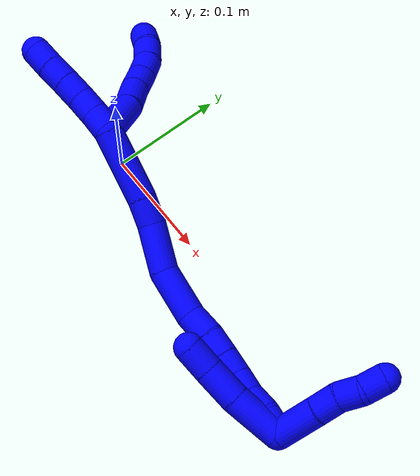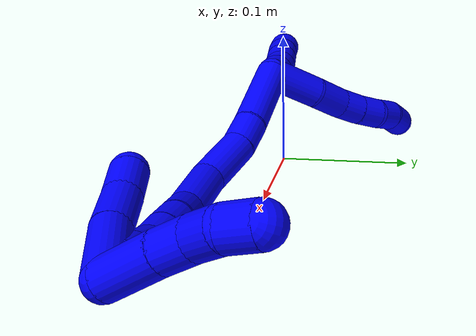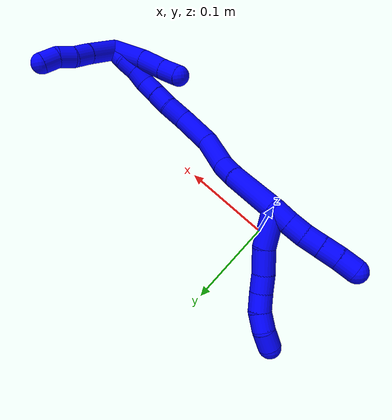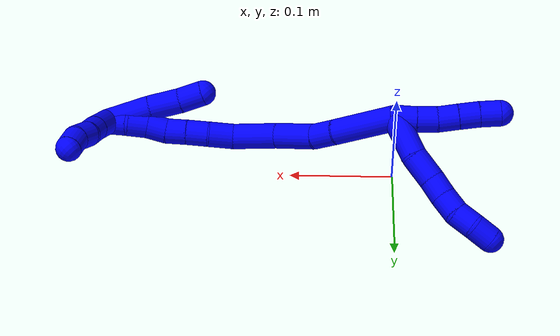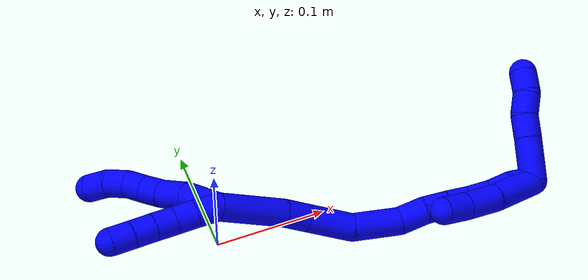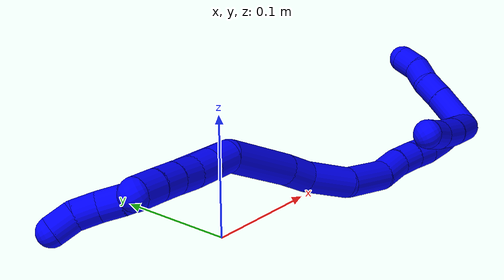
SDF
<sdf version="1.7">
 <world name="default">
  <model name="1">
   <static>0</static>
   <link name="1">
    <collision name="collision-cylinder-e_1_2_8">
     <pose>0.003936 0.006146 -0.019372 -2.83436 0.191318 -1.10955</pose>
     <geometry><cylinder><radius>0.0125</radius><length>0.041403</length></cylinder></geometry>
     <surface>
      <friction><ode><mu>1.16</mu><mu2>1.16</mu2><slip1>0</slip1><slip2>0</slip2></ode></friction>
      <contact><ode><kp>1e+06</kp><kd>1</kd><max_vel>0</max_vel><min_depth>0.001</min_depth></ode></contact>
     </surface>
    </collision>
    <visual name="visual-cylinder-e_1_2_8">
     <pose>0.003936 0.006146 -0.019372 -2.83436 0.191318 -1.10955</pose>
     <geometry><cylinder><radius>0.0125</radius><length>0.041403</length></cylinder></geometry>
     <material><ambient>0 0 1 1</ambient></material>
    </visual>
    <collision name="collision-cylinder-e_2_8_9">
     <pose>0.008924 0.013909 -0.052689 -3.02623 0.074736 -1.14911</pose>
     <geometry><cylinder><radius>0.0125</radius><length>0.028156</length></cylinder></geometry>
     <surface>
      <friction><ode><mu>1.16</mu><mu2>1.16</mu2><slip1>0</slip1><slip2>0</slip2></ode></friction>
      <contact><ode><kp>1e+06</kp><kd>1</kd><max_vel>0</max_vel><min_depth>0.001</min_depth></ode></contact>
     </surface>
    </collision>
    <visual name="visual-cylinder-e_2_8_9">
     <pose>0.008924 0.013909 -0.052689 -3.02623 0.074736 -1.14911</pose>
     <geometry><cylinder><radius>0.0125</radius><length>0.028156</length></cylinder></geometry>
     <material><ambient>0 0 1 1</ambient></material>
    </visual>
    <collision name="collision-cylinder-e_3_9_10">
     <pose>0.010656 0.017963 -0.076344 -2.8955 0.067904 -0.536059</pose>
     <geometry><cylinder><radius>0.0125</radius><length>0.020068</length></cylinder></geometry>
     <surface>
      <friction><ode><mu>1.16</mu><mu2>1.16</mu2><slip1>0</slip1><slip2>0</slip2></ode></friction>
      <contact><ode><kp>1e+06</kp><kd>1</kd><max_vel>0</max_vel><min_depth>0.001</min_depth></ode></contact>
     </surface>
    </collision>
    <visual name="visual-cylinder-e_3_9_10">
     <pose>0.010656 0.017963 -0.076344 -2.8955 0.067904 -0.536059</pose>
     <geometry><cylinder><radius>0.0125</radius><length>0.020068</length></cylinder></geometry>
     <material><ambient>0 0 1 1</ambient></material>
    </visual>
    <collision name="collision-cylinder-e_4_10_11">
     <pose>0.011152 0.023101 -0.095852 -2.87284 -0.018148 0.134038</pose>
     <geometry><cylinder><radius>0.0125</radius><length>0.02033</length></cylinder></geometry>
     <surface>
      <friction><ode><mu>1.16</mu><mu2>1.16</mu2><slip1>0</slip1><slip2>0</slip2></ode></friction>
      <contact><ode><kp>1e+06</kp><kd>1</kd><max_vel>0</max_vel><min_depth>0.001</min_depth></ode></contact>
     </surface>
    </collision>
    <visual name="visual-cylinder-e_4_10_11">
     <pose>0.011152 0.023101 -0.095852 -2.87284 -0.018148 0.134038</pose>
     <geometry><cylinder><radius>0.0125</radius><length>0.02033</length></cylinder></geometry>
     <material><ambient>0 0 1 1</ambient></material>
    </visual>
    <collision name="collision-cylinder-e_5_11_12">
     <pose>0.008965 0.026209 -0.115442 -3.09977 -0.201557 2.73372</pose>
     <geometry><cylinder><radius>0.0125</radius><length>0.020006</length></cylinder></geometry>
     <surface>
      <friction><ode><mu>1.16</mu><mu2>1.16</mu2><slip1>0</slip1><slip2>0</slip2></ode></friction>
      <contact><ode><kp>1e+06</kp><kd>1</kd><max_vel>0</max_vel><min_depth>0.001</min_depth></ode></contact>
     </surface>
    </collision>
    <visual name="visual-cylinder-e_5_11_12">
     <pose>0.008965 0.026209 -0.115442 -3.09977 -0.201557 2.73372</pose>
     <geometry><cylinder><radius>0.0125</radius><length>0.020006</length></cylinder></geometry>
     <material><ambient>0 0 1 1</ambient></material>
    </visual>
    <collision name="collision-cylinder-e_6_12_6">
     <pose>0.006417 0.024562 -0.135024 2.93444 -0.054555 -0.513375</pose>
     <geometry><cylinder><radius>0.0125</radius><length>0.020037</length></cylinder></geometry>
     <surface>
      <friction><ode><mu>1.16</mu><mu2>1.16</mu2><slip1>0</slip1><slip2>0</slip2></ode></friction>
      <contact><ode><kp>1e+06</kp><kd>1</kd><max_vel>0</max_vel><min_depth>0.001</min_depth></ode></contact>
     </surface>
    </collision>
    <visual name="visual-cylinder-e_6_12_6">
     <pose>0.006417 0.024562 -0.135024 2.93444 -0.054555 -0.513375</pose>
     <geometry><cylinder><radius>0.0125</radius><length>0.020037</length></cylinder></geometry>
     <material><ambient>0 0 1 1</ambient></material>
    </visual>
    <collision name="collision-cylinder-e_1_2_13">
     <pose>-0.00561 -0.003799 -0.007355 2.66475 -0.59562 -1.80211</pose>
     <geometry><cylinder><radius>0.0125</radius><length>0.02</length></cylinder></geometry>
     <surface>
      <friction><ode><mu>1.16</mu><mu2>1.16</mu2><slip1>0</slip1><slip2>0</slip2></ode></friction>
      <contact><ode><kp>1e+06</kp><kd>1</kd><max_vel>0</max_vel><min_depth>0.001</min_depth></ode></contact>
     </surface>
    </collision>
    <visual name="visual-cylinder-e_1_2_13">
     <pose>-0.00561 -0.003799 -0.007355 2.66475 -0.59562 -1.80211</pose>
     <geometry><cylinder><radius>0.0125</radius><length>0.02</length></cylinder></geometry>
     <material><ambient>0 0 1 1</ambient></material>
    </visual>
    <collision name="collision-cylinder-e_2_13_14">
     <pose>-0.01722 -0.011686 -0.021586 2.60536 -0.643502 -1.76296</pose>
     <geometry><cylinder><radius>0.0125</radius><length>0.02</length></cylinder></geometry>
     <surface>
      <friction><ode><mu>1.16</mu><mu2>1.16</mu2><slip1>0</slip1><slip2>0</slip2></ode></friction>
      <contact><ode><kp>1e+06</kp><kd>1</kd><max_vel>0</max_vel><min_depth>0.001</min_depth></ode></contact>
     </surface>
    </collision>
    <visual name="visual-cylinder-e_2_13_14">
     <pose>-0.01722 -0.011686 -0.021586 2.60536 -0.643502 -1.76296</pose>
     <geometry><cylinder><radius>0.0125</radius><length>0.02</length></cylinder></geometry>
     <material><ambient>0 0 1 1</ambient></material>
    </visual>
    <collision name="collision-cylinder-e_3_14_15">
     <pose>-0.030155 -0.019882 -0.034382 2.53479 -0.766237 -1.82076</pose>
     <geometry><cylinder><radius>0.0125</radius><length>0.02</length></cylinder></geometry>
     <surface>
      <friction><ode><mu>1.16</mu><mu2>1.16</mu2><slip1>0</slip1><slip2>0</slip2></ode></friction>
      <contact><ode><kp>1e+06</kp><kd>1</kd><max_vel>0</max_vel><min_depth>0.001</min_depth></ode></contact>
     </surface>
    </collision>
    <visual name="visual-cylinder-e_3_14_15">
     <pose>-0.030155 -0.019882 -0.034382 2.53479 -0.766237 -1.82076</pose>
     <geometry><cylinder><radius>0.0125</radius><length>0.02</length></cylinder></geometry>
     <material><ambient>0 0 1 1</ambient></material>
    </visual>
    <collision name="collision-cylinder-e_4_15_16">
     <pose>-0.043843 -0.028306 -0.046281 2.51651 -0.741531 -1.75462</pose>
     <geometry><cylinder><radius>0.0125</radius><length>0.02</length></cylinder></geometry>
     <surface>
      <friction><ode><mu>1.16</mu><mu2>1.16</mu2><slip1>0</slip1><slip2>0</slip2></ode></friction>
      <contact><ode><kp>1e+06</kp><kd>1</kd><max_vel>0</max_vel><min_depth>0.001</min_depth></ode></contact>
     </surface>
    </collision>
    <visual name="visual-cylinder-e_4_15_16">
     <pose>-0.043843 -0.028306 -0.046281 2.51651 -0.741531 -1.75462</pose>
     <geometry><cylinder><radius>0.0125</radius><length>0.02</length></cylinder></geometry>
     <material><ambient>0 0 1 1</ambient></material>
    </visual>
    <collision name="collision-cylinder-e_5_16_5">
     <pose>-0.056988 -0.036746 -0.058753 2.57554 -0.693246 -1.78582</pose>
     <geometry><cylinder><radius>0.0125</radius><length>0.02</length></cylinder></geometry>
     <surface>
      <friction><ode><mu>1.16</mu><mu2>1.16</mu2><slip1>0</slip1><slip2>0</slip2></ode></friction>
      <contact><ode><kp>1e+06</kp><kd>1</kd><max_vel>0</max_vel><min_depth>0.001</min_depth></ode></contact>
     </surface>
    </collision>
    <visual name="visual-cylinder-e_5_16_5">
     <pose>-0.056988 -0.036746 -0.058753 2.57554 -0.693246 -1.78582</pose>
     <geometry><cylinder><radius>0.0125</radius><length>0.02</length></cylinder></geometry>
     <material><ambient>0 0 1 1</ambient></material>
    </visual>
    <collision name="collision-cylinder-e_1_2_17">
     <pose>0.027222 0.002143 0.016075 -0.132526 1.03353 -0.075385</pose>
     <geometry><cylinder><radius>0.0125</radius><length>0.063373</length></cylinder></geometry>
     <surface>
      <friction><ode><mu>1.16</mu><mu2>1.16</mu2><slip1>0</slip1><slip2>0</slip2></ode></friction>
      <contact><ode><kp>1e+06</kp><kd>1</kd><max_vel>0</max_vel><min_depth>0.001</min_depth></ode></contact>
     </surface>
    </collision>
    <visual name="visual-cylinder-e_1_2_17">
     <pose>0.027222 0.002143 0.016075 -0.132526 1.03353 -0.075385</pose>
     <geometry><cylinder><radius>0.0125</radius><length>0.063373</length></cylinder></geometry>
     <material><ambient>0 0 1 1</ambient></material>
    </visual>
    <collision name="collision-cylinder-e_2_17_18">
     <pose>0.06455 0.003805 0.038078 0.080974 1.03883 0.046317</pose>
     <geometry><cylinder><radius>0.0125</radius><length>0.023453</length></cylinder></geometry>
     <surface>
      <friction><ode><mu>1.16</mu><mu2>1.16</mu2><slip1>0</slip1><slip2>0</slip2></ode></friction>
      <contact><ode><kp>1e+06</kp><kd>1</kd><max_vel>0</max_vel><min_depth>0.001</min_depth></ode></contact>
     </surface>
    </collision>
    <visual name="visual-cylinder-e_2_17_18">
     <pose>0.06455 0.003805 0.038078 0.080974 1.03883 0.046317</pose>
     <geometry><cylinder><radius>0.0125</radius><length>0.023453</length></cylinder></geometry>
     <material><ambient>0 0 1 1</ambient></material>
    </visual>
    <collision name="collision-cylinder-e_3_18_19">
     <pose>0.090156 0.001651 0.058022 0.118767 0.83212 0.052528</pose>
     <geometry><cylinder><radius>0.0125</radius><length>0.041926</length></cylinder></geometry>
     <surface>
      <friction><ode><mu>1.16</mu><mu2>1.16</mu2><slip1>0</slip1><slip2>0</slip2></ode></friction>
      <contact><ode><kp>1e+06</kp><kd>1</kd><max_vel>0</max_vel><min_depth>0.001</min_depth></ode></contact>
     </surface>
    </collision>
    <visual name="visual-cylinder-e_3_18_19">
     <pose>0.090156 0.001651 0.058022 0.118767 0.83212 0.052528</pose>
     <geometry><cylinder><radius>0.0125</radius><length>0.041926</length></cylinder></geometry>
     <material><ambient>0 0 1 1</ambient></material>
    </visual>
    <collision name="collision-cylinder-e_4_19_20">
     <pose>0.120896 0.0053 0.087107 -0.339432 0.761676 -0.137009</pose>
     <geometry><cylinder><radius>0.0125</radius><length>0.044169</length></cylinder></geometry>
     <surface>
      <friction><ode><mu>1.16</mu><mu2>1.16</mu2><slip1>0</slip1><slip2>0</slip2></ode></friction>
      <contact><ode><kp>1e+06</kp><kd>1</kd><max_vel>0</max_vel><min_depth>0.001</min_depth></ode></contact>
     </surface>
    </collision>
    <visual name="visual-cylinder-e_4_19_20">
     <pose>0.120896 0.0053 0.087107 -0.339432 0.761676 -0.137009</pose>
     <geometry><cylinder><radius>0.0125</radius><length>0.044169</length></cylinder></geometry>
     <material><ambient>0 0 1 1</ambient></material>
    </visual>
    <collision name="collision-cylinder-e_5_20_21">
     <pose>0.142335 0.016451 0.111436 -0.561948 0.515344 -0.151822</pose>
     <geometry><cylinder><radius>0.0125</radius><length>0.02515</length></cylinder></geometry>
     <surface>
      <friction><ode><mu>1.16</mu><mu2>1.16</mu2><slip1>0</slip1><slip2>0</slip2></ode></friction>
      <contact><ode><kp>1e+06</kp><kd>1</kd><max_vel>0</max_vel><min_depth>0.001</min_depth></ode></contact>
     </surface>
    </collision>
    <visual name="visual-cylinder-e_5_20_21">
     <pose>0.142335 0.016451 0.111436 -0.561948 0.515344 -0.151822</pose>
     <geometry><cylinder><radius>0.0125</radius><length>0.02515</length></cylinder></geometry>
     <material><ambient>0 0 1 1</ambient></material>
    </visual>
    <collision name="collision-cylinder-e_6_21_22">
     <pose>0.154632 0.025835 0.128763 -0.414884 0.605304 -0.131247</pose>
     <geometry><cylinder><radius>0.0125</radius><length>0.02144</length></cylinder></geometry>
     <surface>
      <friction><ode><mu>1.16</mu><mu2>1.16</mu2><slip1>0</slip1><slip2>0</slip2></ode></friction>
      <contact><ode><kp>1e+06</kp><kd>1</kd><max_vel>0</max_vel><min_depth>0.001</min_depth></ode></contact>
     </surface>
    </collision>
    <visual name="visual-cylinder-e_6_21_22">
     <pose>0.154632 0.025835 0.128763 -0.414884 0.605304 -0.131247</pose>
     <geometry><cylinder><radius>0.0125</radius><length>0.02144</length></cylinder></geometry>
     <material><ambient>0 0 1 1</ambient></material>
    </visual>
    <collision name="collision-cylinder-e_7_22_23">
     <pose>0.166882 0.032484 0.144365 -0.389884 0.646667 -0.132135</pose>
     <geometry><cylinder><radius>0.0125</radius><length>0.020413</length></cylinder></geometry>
     <surface>
      <friction><ode><mu>1.16</mu><mu2>1.16</mu2><slip1>0</slip1><slip2>0</slip2></ode></friction>
      <contact><ode><kp>1e+06</kp><kd>1</kd><max_vel>0</max_vel><min_depth>0.001</min_depth></ode></contact>
     </surface>
    </collision>
    <visual name="visual-cylinder-e_7_22_23">
     <pose>0.166882 0.032484 0.144365 -0.389884 0.646667 -0.132135</pose>
     <geometry><cylinder><radius>0.0125</radius><length>0.020413</length></cylinder></geometry>
     <material><ambient>0 0 1 1</ambient></material>
    </visual>
    <collision name="collision-cylinder-e_8_23_24">
     <pose>0.17701 0.038973 0.16045 -0.377758 0.408166 -0.079084</pose>
     <geometry><cylinder><radius>0.0125</radius><length>0.020043</length></cylinder></geometry>
     <surface>
      <friction><ode><mu>1.16</mu><mu2>1.16</mu2><slip1>0</slip1><slip2>0</slip2></ode></friction>
      <contact><ode><kp>1e+06</kp><kd>1</kd><max_vel>0</max_vel><min_depth>0.001</min_depth></ode></contact>
     </surface>
    </collision>
    <visual name="visual-cylinder-e_8_23_24">
     <pose>0.17701 0.038973 0.16045 -0.377758 0.408166 -0.079084</pose>
     <geometry><cylinder><radius>0.0125</radius><length>0.020043</length></cylinder></geometry>
     <material><ambient>0 0 1 1</ambient></material>
    </visual>
    <collision name="collision-cylinder-e_9_24_25">
     <pose>0.185688 0.047129 0.176443 -0.569196 0.488854 -0.145669</pose>
     <geometry><cylinder><radius>0.0125</radius><length>0.020019</length></cylinder></geometry>
     <surface>
      <friction><ode><mu>1.16</mu><mu2>1.16</mu2><slip1>0</slip1><slip2>0</slip2></ode></friction>
      <contact><ode><kp>1e+06</kp><kd>1</kd><max_vel>0</max_vel><min_depth>0.001</min_depth></ode></contact>
     </surface>
    </collision>
    <visual name="visual-cylinder-e_9_24_25">
     <pose>0.185688 0.047129 0.176443 -0.569196 0.488854 -0.145669</pose>
     <geometry><cylinder><radius>0.0125</radius><length>0.020019</length></cylinder></geometry>
     <material><ambient>0 0 1 1</ambient></material>
    </visual>
    <collision name="collision-cylinder-e_10_25_1">
     <pose>0.196439 0.054493 0.191421 -0.332536 0.649321 -0.112845</pose>
     <geometry><cylinder><radius>0.0125</radius><length>0.020013</length></cylinder></geometry>
     <surface>
      <friction><ode><mu>1.16</mu><mu2>1.16</mu2><slip1>0</slip1><slip2>0</slip2></ode></friction>
      <contact><ode><kp>1e+06</kp><kd>1</kd><max_vel>0</max_vel><min_depth>0.001</min_depth></ode></contact>
     </surface>
    </collision>
    <visual name="visual-cylinder-e_10_25_1">
     <pose>0.196439 0.054493 0.191421 -0.332536 0.649321 -0.112845</pose>
     <geometry><cylinder><radius>0.0125</radius><length>0.020013</length></cylinder></geometry>
     <material><ambient>0 0 1 1</ambient></material>
    </visual>
    <collision name="collision-cylinder-e_1_1_26">
     <pose>0.198613 0.076132 0.197015 -1.67231 -0.199884 0.221114</pose>
     <geometry><cylinder><radius>0.0125</radius><length>0.039048</length></cylinder></geometry>
     <surface>
      <friction><ode><mu>1.16</mu><mu2>1.16</mu2><slip1>0</slip1><slip2>0</slip2></ode></friction>
      <contact><ode><kp>1e+06</kp><kd>1</kd><max_vel>0</max_vel><min_depth>0.001</min_depth></ode></contact>
     </surface>
    </collision>
    <visual name="visual-cylinder-e_1_1_26">
     <pose>0.198613 0.076132 0.197015 -1.67231 -0.199884 0.221114</pose>
     <geometry><cylinder><radius>0.0125</radius><length>0.039048</length></cylinder></geometry>
     <material><ambient>0 0 1 1</ambient></material>
    </visual>
    <collision name="collision-cylinder-e_2_26_27">
     <pose>0.193001 0.105309 0.193518 -1.72326 -0.167586 0.195141</pose>
     <geometry><cylinder><radius>0.0125</radius><length>0.02081</length></cylinder></geometry>
     <surface>
      <friction><ode><mu>1.16</mu><mu2>1.16</mu2><slip1>0</slip1><slip2>0</slip2></ode></friction>
      <contact><ode><kp>1e+06</kp><kd>1</kd><max_vel>0</max_vel><min_depth>0.001</min_depth></ode></contact>
     </surface>
    </collision>
    <visual name="visual-cylinder-e_2_26_27">
     <pose>0.193001 0.105309 0.193518 -1.72326 -0.167586 0.195141</pose>
     <geometry><cylinder><radius>0.0125</radius><length>0.02081</length></cylinder></geometry>
     <material><ambient>0 0 1 1</ambient></material>
    </visual>
    <collision name="collision-cylinder-e_3_27_28">
     <pose>0.19126 0.125496 0.192583 -1.50878 -0.000508 0.000477</pose>
     <geometry><cylinder><radius>0.0125</radius><length>0.020131</length></cylinder></geometry>
     <surface>
      <friction><ode><mu>1.16</mu><mu2>1.16</mu2><slip1>0</slip1><slip2>0</slip2></ode></friction>
      <contact><ode><kp>1e+06</kp><kd>1</kd><max_vel>0</max_vel><min_depth>0.001</min_depth></ode></contact>
     </surface>
    </collision>
    <visual name="visual-cylinder-e_3_27_28">
     <pose>0.19126 0.125496 0.192583 -1.50878 -0.000508 0.000477</pose>
     <geometry><cylinder><radius>0.0125</radius><length>0.020131</length></cylinder></geometry>
     <material><ambient>0 0 1 1</ambient></material>
    </visual>
    <collision name="collision-cylinder-e_4_28_4">
     <pose>0.19173 0.145136 0.190409 -1.85453 0.047526 -0.063355</pose>
     <geometry><cylinder><radius>0.0125</radius><length>0.020011</length></cylinder></geometry>
     <surface>
      <friction><ode><mu>1.16</mu><mu2>1.16</mu2><slip1>0</slip1><slip2>0</slip2></ode></friction>
      <contact><ode><kp>1e+06</kp><kd>1</kd><max_vel>0</max_vel><min_depth>0.001</min_depth></ode></contact>
     </surface>
    </collision>
    <visual name="visual-cylinder-e_4_28_4">
     <pose>0.19173 0.145136 0.190409 -1.85453 0.047526 -0.063355</pose>
     <geometry><cylinder><radius>0.0125</radius><length>0.020011</length></cylinder></geometry>
     <material><ambient>0 0 1 1</ambient></material>
    </visual>
    <collision name="collision-cylinder-e_1_1_29">
     <pose>0.18558 0.046476 0.189436 2.3016 -0.87018 -1.61079</pose>
     <geometry><cylinder><radius>0.0125</radius><length>0.04424</length></cylinder></geometry>
     <surface>
      <friction><ode><mu>1.16</mu><mu2>1.16</mu2><slip1>0</slip1><slip2>0</slip2></ode></friction>
      <contact><ode><kp>1e+06</kp><kd>1</kd><max_vel>0</max_vel><min_depth>0.001</min_depth></ode></contact>
     </surface>
    </collision>
    <visual name="visual-cylinder-e_1_1_29">
     <pose>0.18558 0.046476 0.189436 2.3016 -0.87018 -1.61079</pose>
     <geometry><cylinder><radius>0.0125</radius><length>0.04424</length></cylinder></geometry>
     <material><ambient>0 0 1 1</ambient></material>
    </visual>
    <collision name="collision-cylinder-e_2_29_30">
     <pose>0.156451 0.02988 0.171857 2.50358 -0.883269 -1.92201</pose>
     <geometry><cylinder><radius>0.0125</radius><length>0.031624</length></cylinder></geometry>
     <surface>
      <friction><ode><mu>1.16</mu><mu2>1.16</mu2><slip1>0</slip1><slip2>0</slip2></ode></friction>
      <contact><ode><kp>1e+06</kp><kd>1</kd><max_vel>0</max_vel><min_depth>0.001</min_depth></ode></contact>
     </surface>
    </collision>
    <visual name="visual-cylinder-e_2_29_30">
     <pose>0.156451 0.02988 0.171857 2.50358 -0.883269 -1.92201</pose>
     <geometry><cylinder><radius>0.0125</radius><length>0.031624</length></cylinder></geometry>
     <material><ambient>0 0 1 1</ambient></material>
    </visual>
    <collision name="collision-cylinder-e_3_30_3">
     <pose>0.134133 0.020011 0.158455 2.5118 -0.991235 -2.05707</pose>
     <geometry><cylinder><radius>0.0125</radius><length>0.024136</length></cylinder></geometry>
     <surface>
      <friction><ode><mu>1.16</mu><mu2>1.16</mu2><slip1>0</slip1><slip2>0</slip2></ode></friction>
      <contact><ode><kp>1e+06</kp><kd>1</kd><max_vel>0</max_vel><min_depth>0.001</min_depth></ode></contact>
     </surface>
    </collision>
    <visual name="visual-cylinder-e_3_30_3">
     <pose>0.134133 0.020011 0.158455 2.5118 -0.991235 -2.05707</pose>
     <geometry><cylinder><radius>0.0125</radius><length>0.024136</length></cylinder></geometry>
     <material><ambient>0 0 1 1</ambient></material>
    </visual>
    <collision name="collision-sphere-3">
     <pose>0.124036 0.016119 0.153114 0 -0 0</pose>
     <geometry><sphere><radius>0.0125</radius></sphere></geometry>
     <surface>
      <friction><ode><mu>1.16</mu><mu2>1.16</mu2><slip1>0</slip1><slip2>0</slip2></ode></friction>
      <contact><ode><kp>1e+06</kp><kd>1</kd><max_vel>0</max_vel><min_depth>0.001</min_depth></ode></contact>
     </surface>
    </collision>
    <visual name="visual-sphere-3">
     <pose>0.124036 0.016119 0.153114 0 -0 0</pose>
     <geometry><sphere><radius>0.0125</radius></sphere></geometry>
     <material><ambient>0 0 1 1</ambient></material>
    </visual>
    <collision name="collision-sphere-30">
     <pose>0.144231 0.023904 0.163796 0 -0 0</pose>
     <geometry><sphere><radius>0.0125</radius></sphere></geometry>
     <surface>
      <friction><ode><mu>1.16</mu><mu2>1.16</mu2><slip1>0</slip1><slip2>0</slip2></ode></friction>
      <contact><ode><kp>1e+06</kp><kd>1</kd><max_vel>0</max_vel><min_depth>0.001</min_depth></ode></contact>
     </surface>
    </collision>
    <visual name="visual-sphere-30">
     <pose>0.144231 0.023904 0.163796 0 -0 0</pose>
     <geometry><sphere><radius>0.0125</radius></sphere></geometry>
     <material><ambient>0 0 1 1</ambient></material>
    </visual>
    <collision name="collision-sphere-29">
     <pose>0.16867 0.035857 0.179917 0 -0 0</pose>
     <geometry><sphere><radius>0.0125</radius></sphere></geometry>
     <surface>
      <friction><ode><mu>1.16</mu><mu2>1.16</mu2><slip1>0</slip1><slip2>0</slip2></ode></friction>
      <contact><ode><kp>1e+06</kp><kd>1</kd><max_vel>0</max_vel><min_depth>0.001</min_depth></ode></contact>
     </surface>
    </collision>
    <visual name="visual-sphere-29">
     <pose>0.16867 0.035857 0.179917 0 -0 0</pose>
     <geometry><sphere><radius>0.0125</radius></sphere></geometry>
     <material><ambient>0 0 1 1</ambient></material>
    </visual>
    <collision name="collision-sphere-4">
     <pose>0.192205 0.154731 0.187611 0 -0 0</pose>
     <geometry><sphere><radius>0.0125</radius></sphere></geometry>
     <surface>
      <friction><ode><mu>1.16</mu><mu2>1.16</mu2><slip1>0</slip1><slip2>0</slip2></ode></friction>
      <contact><ode><kp>1e+06</kp><kd>1</kd><max_vel>0</max_vel><min_depth>0.001</min_depth></ode></contact>
     </surface>
    </collision>
    <visual name="visual-sphere-4">
     <pose>0.192205 0.154731 0.187611 0 -0 0</pose>
     <geometry><sphere><radius>0.0125</radius></sphere></geometry>
     <material><ambient>0 0 1 1</ambient></material>
    </visual>
    <collision name="collision-sphere-28">
     <pose>0.191255 0.135542 0.193207 0 -0 0</pose>
     <geometry><sphere><radius>0.0125</radius></sphere></geometry>
     <surface>
      <friction><ode><mu>1.16</mu><mu2>1.16</mu2><slip1>0</slip1><slip2>0</slip2></ode></friction>
      <contact><ode><kp>1e+06</kp><kd>1</kd><max_vel>0</max_vel><min_depth>0.001</min_depth></ode></contact>
     </surface>
    </collision>
    <visual name="visual-sphere-28">
     <pose>0.191255 0.135542 0.193207 0 -0 0</pose>
     <geometry><sphere><radius>0.0125</radius></sphere></geometry>
     <material><ambient>0 0 1 1</ambient></material>
    </visual>
    <collision name="collision-sphere-27">
     <pose>0.191265 0.11545 0.191959 0 -0 0</pose>
     <geometry><sphere><radius>0.0125</radius></sphere></geometry>
     <surface>
      <friction><ode><mu>1.16</mu><mu2>1.16</mu2><slip1>0</slip1><slip2>0</slip2></ode></friction>
      <contact><ode><kp>1e+06</kp><kd>1</kd><max_vel>0</max_vel><min_depth>0.001</min_depth></ode></contact>
     </surface>
    </collision>
    <visual name="visual-sphere-27">
     <pose>0.191265 0.11545 0.191959 0 -0 0</pose>
     <geometry><sphere><radius>0.0125</radius></sphere></geometry>
     <material><ambient>0 0 1 1</ambient></material>
    </visual>
    <collision name="collision-sphere-26">
     <pose>0.194736 0.095169 0.195076 0 -0 0</pose>
     <geometry><sphere><radius>0.0125</radius></sphere></geometry>
     <surface>
      <friction><ode><mu>1.16</mu><mu2>1.16</mu2><slip1>0</slip1><slip2>0</slip2></ode></friction>
      <contact><ode><kp>1e+06</kp><kd>1</kd><max_vel>0</max_vel><min_depth>0.001</min_depth></ode></contact>
     </surface>
    </collision>
    <visual name="visual-sphere-26">
     <pose>0.194736 0.095169 0.195076 0 -0 0</pose>
     <geometry><sphere><radius>0.0125</radius></sphere></geometry>
     <material><ambient>0 0 1 1</ambient></material>
    </visual>
    <collision name="collision-sphere-1">
     <pose>0.202489 0.057095 0.198954 0 -0 0</pose>
     <geometry><sphere><radius>0.0125</radius></sphere></geometry>
     <surface>
      <friction><ode><mu>1.16</mu><mu2>1.16</mu2><slip1>0</slip1><slip2>0</slip2></ode></friction>
      <contact><ode><kp>1e+06</kp><kd>1</kd><max_vel>0</max_vel><min_depth>0.001</min_depth></ode></contact>
     </surface>
    </collision>
    <visual name="visual-sphere-1">
     <pose>0.202489 0.057095 0.198954 0 -0 0</pose>
     <geometry><sphere><radius>0.0125</radius></sphere></geometry>
     <material><ambient>0 0 1 1</ambient></material>
    </visual>
    <collision name="collision-sphere-25">
     <pose>0.190389 0.051892 0.183887 0 -0 0</pose>
     <geometry><sphere><radius>0.0125</radius></sphere></geometry>
     <surface>
      <friction><ode><mu>1.16</mu><mu2>1.16</mu2><slip1>0</slip1><slip2>0</slip2></ode></friction>
      <contact><ode><kp>1e+06</kp><kd>1</kd><max_vel>0</max_vel><min_depth>0.001</min_depth></ode></contact>
     </surface>
    </collision>
    <visual name="visual-sphere-25">
     <pose>0.190389 0.051892 0.183887 0 -0 0</pose>
     <geometry><sphere><radius>0.0125</radius></sphere></geometry>
     <material><ambient>0 0 1 1</ambient></material>
    </visual>
    <collision name="collision-sphere-24">
     <pose>0.180987 0.042366 0.169 0 -0 0</pose>
     <geometry><sphere><radius>0.0125</radius></sphere></geometry>
     <surface>
      <friction><ode><mu>1.16</mu><mu2>1.16</mu2><slip1>0</slip1><slip2>0</slip2></ode></friction>
      <contact><ode><kp>1e+06</kp><kd>1</kd><max_vel>0</max_vel><min_depth>0.001</min_depth></ode></contact>
     </surface>
    </collision>
    <visual name="visual-sphere-24">
     <pose>0.180987 0.042366 0.169 0 -0 0</pose>
     <geometry><sphere><radius>0.0125</radius></sphere></geometry>
     <material><ambient>0 0 1 1</ambient></material>
    </visual>
    <collision name="collision-sphere-23">
     <pose>0.173032 0.035581 0.1519 0 -0 0</pose>
     <geometry><sphere><radius>0.0125</radius></sphere></geometry>
     <surface>
      <friction><ode><mu>1.16</mu><mu2>1.16</mu2><slip1>0</slip1><slip2>0</slip2></ode></friction>
      <contact><ode><kp>1e+06</kp><kd>1</kd><max_vel>0</max_vel><min_depth>0.001</min_depth></ode></contact>
     </surface>
    </collision>
    <visual name="visual-sphere-23">
     <pose>0.173032 0.035581 0.1519 0 -0 0</pose>
     <geometry><sphere><radius>0.0125</radius></sphere></geometry>
     <material><ambient>0 0 1 1</ambient></material>
    </visual>
    <collision name="collision-sphere-22">
     <pose>0.160732 0.029388 0.136831 0 -0 0</pose>
     <geometry><sphere><radius>0.0125</radius></sphere></geometry>
     <surface>
      <friction><ode><mu>1.16</mu><mu2>1.16</mu2><slip1>0</slip1><slip2>0</slip2></ode></friction>
      <contact><ode><kp>1e+06</kp><kd>1</kd><max_vel>0</max_vel><min_depth>0.001</min_depth></ode></contact>
     </surface>
    </collision>
    <visual name="visual-sphere-22">
     <pose>0.160732 0.029388 0.136831 0 -0 0</pose>
     <geometry><sphere><radius>0.0125</radius></sphere></geometry>
     <material><ambient>0 0 1 1</ambient></material>
    </visual>
    <collision name="collision-sphere-21">
     <pose>0.148532 0.022282 0.120696 0 -0 0</pose>
     <geometry><sphere><radius>0.0125</radius></sphere></geometry>
     <surface>
      <friction><ode><mu>1.16</mu><mu2>1.16</mu2><slip1>0</slip1><slip2>0</slip2></ode></friction>
      <contact><ode><kp>1e+06</kp><kd>1</kd><max_vel>0</max_vel><min_depth>0.001</min_depth></ode></contact>
     </surface>
    </collision>
    <visual name="visual-sphere-21">
     <pose>0.148532 0.022282 0.120696 0 -0 0</pose>
     <geometry><sphere><radius>0.0125</radius></sphere></geometry>
     <material><ambient>0 0 1 1</ambient></material>
    </visual>
    <collision name="collision-sphere-12">
     <pose>0.006963 0.026619 -0.125234 0 -0 0</pose>
     <geometry><sphere><radius>0.0125</radius></sphere></geometry>
     <surface>
      <friction><ode><mu>1.16</mu><mu2>1.16</mu2><slip1>0</slip1><slip2>0</slip2></ode></friction>
      <contact><ode><kp>1e+06</kp><kd>1</kd><max_vel>0</max_vel><min_depth>0.001</min_depth></ode></contact>
     </surface>
    </collision>
    <visual name="visual-sphere-12">
     <pose>0.006963 0.026619 -0.125234 0 -0 0</pose>
     <geometry><sphere><radius>0.0125</radius></sphere></geometry>
     <material><ambient>0 0 1 1</ambient></material>
    </visual>
    <collision name="collision-sphere-11">
     <pose>0.010968 0.0258 -0.105651 0 -0 0</pose>
     <geometry><sphere><radius>0.0125</radius></sphere></geometry>
     <surface>
      <friction><ode><mu>1.16</mu><mu2>1.16</mu2><slip1>0</slip1><slip2>0</slip2></ode></friction>
      <contact><ode><kp>1e+06</kp><kd>1</kd><max_vel>0</max_vel><min_depth>0.001</min_depth></ode></contact>
     </surface>
    </collision>
    <visual name="visual-sphere-11">
     <pose>0.010968 0.0258 -0.105651 0 -0 0</pose>
     <geometry><sphere><radius>0.0125</radius></sphere></geometry>
     <material><ambient>0 0 1 1</ambient></material>
    </visual>
    <collision name="collision-sphere-10">
     <pose>0.011337 0.020402 -0.086054 0 -0 0</pose>
     <geometry><sphere><radius>0.0125</radius></sphere></geometry>
     <surface>
      <friction><ode><mu>1.16</mu><mu2>1.16</mu2><slip1>0</slip1><slip2>0</slip2></ode></friction>
      <contact><ode><kp>1e+06</kp><kd>1</kd><max_vel>0</max_vel><min_depth>0.001</min_depth></ode></contact>
     </surface>
    </collision>
    <visual name="visual-sphere-10">
     <pose>0.011337 0.020402 -0.086054 0 -0 0</pose>
     <geometry><sphere><radius>0.0125</radius></sphere></geometry>
     <material><ambient>0 0 1 1</ambient></material>
    </visual>
    <collision name="collision-sphere-9">
     <pose>0.009975 0.015525 -0.066635 0 -0 0</pose>
     <geometry><sphere><radius>0.0125</radius></sphere></geometry>
     <surface>
      <friction><ode><mu>1.16</mu><mu2>1.16</mu2><slip1>0</slip1><slip2>0</slip2></ode></friction>
      <contact><ode><kp>1e+06</kp><kd>1</kd><max_vel>0</max_vel><min_depth>0.001</min_depth></ode></contact>
     </surface>
    </collision>
    <visual name="visual-sphere-9">
     <pose>0.009975 0.015525 -0.066635 0 -0 0</pose>
     <geometry><sphere><radius>0.0125</radius></sphere></geometry>
     <material><ambient>0 0 1 1</ambient></material>
    </visual>
    <collision name="collision-sphere-2">
     <geometry><sphere><radius>0.0125</radius></sphere></geometry>
     <surface>
      <friction><ode><mu>1.16</mu><mu2>1.16</mu2><slip1>0</slip1><slip2>0</slip2></ode></friction>
      <contact><ode><kp>1e+06</kp><kd>1</kd><max_vel>0</max_vel><min_depth>0.001</min_depth></ode></contact>
     </surface>
    </collision>
    <visual name="visual-sphere-2">
     <geometry><sphere><radius>0.0125</radius></sphere></geometry>
     <material><ambient>0 0 1 1</ambient></material>
    </visual>
    <collision name="collision-sphere-19">
     <pose>0.105655 -2.1e-05 0.072037 0 -0 0</pose>
     <geometry><sphere><radius>0.0125</radius></sphere></geometry>
     <surface>
      <friction><ode><mu>1.16</mu><mu2>1.16</mu2><slip1>0</slip1><slip2>0</slip2></ode></friction>
      <contact><ode><kp>1e+06</kp><kd>1</kd><max_vel>0</max_vel><min_depth>0.001</min_depth></ode></contact>
     </surface>
    </collision>
    <visual name="visual-sphere-19">
     <pose>0.105655 -2.1e-05 0.072037 0 -0 0</pose>
     <geometry><sphere><radius>0.0125</radius></sphere></geometry>
     <material><ambient>0 0 1 1</ambient></material>
    </visual>
    <collision name="collision-sphere-8">
     <pose>0.007873 0.012293 -0.038744 0 -0 0</pose>
     <geometry><sphere><radius>0.0125</radius></sphere></geometry>
     <surface>
      <friction><ode><mu>1.16</mu><mu2>1.16</mu2><slip1>0</slip1><slip2>0</slip2></ode></friction>
      <contact><ode><kp>1e+06</kp><kd>1</kd><max_vel>0</max_vel><min_depth>0.001</min_depth></ode></contact>
     </surface>
    </collision>
    <visual name="visual-sphere-8">
     <pose>0.007873 0.012293 -0.038744 0 -0 0</pose>
     <geometry><sphere><radius>0.0125</radius></sphere></geometry>
     <material><ambient>0 0 1 1</ambient></material>
    </visual>
    <collision name="collision-sphere-6">
     <pose>0.00587 0.022504 -0.144814 0 -0 0</pose>
     <geometry><sphere><radius>0.0125</radius></sphere></geometry>
     <surface>
      <friction><ode><mu>1.16</mu><mu2>1.16</mu2><slip1>0</slip1><slip2>0</slip2></ode></friction>
      <contact><ode><kp>1e+06</kp><kd>1</kd><max_vel>0</max_vel><min_depth>0.001</min_depth></ode></contact>
     </surface>
    </collision>
    <visual name="visual-sphere-6">
     <pose>0.00587 0.022504 -0.144814 0 -0 0</pose>
     <geometry><sphere><radius>0.0125</radius></sphere></geometry>
     <material><ambient>0 0 1 1</ambient></material>
    </visual>
    <collision name="collision-sphere-13">
     <pose>-0.01122 -0.007599 -0.014709 0 -0 0</pose>
     <geometry><sphere><radius>0.0125</radius></sphere></geometry>
     <surface>
      <friction><ode><mu>1.16</mu><mu2>1.16</mu2><slip1>0</slip1><slip2>0</slip2></ode></friction>
      <contact><ode><kp>1e+06</kp><kd>1</kd><max_vel>0</max_vel><min_depth>0.001</min_depth></ode></contact>
     </surface>
    </collision>
    <visual name="visual-sphere-13">
     <pose>-0.01122 -0.007599 -0.014709 0 -0 0</pose>
     <geometry><sphere><radius>0.0125</radius></sphere></geometry>
     <material><ambient>0 0 1 1</ambient></material>
    </visual>
    <collision name="collision-sphere-14">
     <pose>-0.02322 -0.015773 -0.028463 0 -0 0</pose>
     <geometry><sphere><radius>0.0125</radius></sphere></geometry>
     <surface>
      <friction><ode><mu>1.16</mu><mu2>1.16</mu2><slip1>0</slip1><slip2>0</slip2></ode></friction>
      <contact><ode><kp>1e+06</kp><kd>1</kd><max_vel>0</max_vel><min_depth>0.001</min_depth></ode></contact>
     </surface>
    </collision>
    <visual name="visual-sphere-14">
     <pose>-0.02322 -0.015773 -0.028463 0 -0 0</pose>
     <geometry><sphere><radius>0.0125</radius></sphere></geometry>
     <material><ambient>0 0 1 1</ambient></material>
    </visual>
    <collision name="collision-sphere-15">
     <pose>-0.037089 -0.023991 -0.040301 0 -0 0</pose>
     <geometry><sphere><radius>0.0125</radius></sphere></geometry>
     <surface>
      <friction><ode><mu>1.16</mu><mu2>1.16</mu2><slip1>0</slip1><slip2>0</slip2></ode></friction>
      <contact><ode><kp>1e+06</kp><kd>1</kd><max_vel>0</max_vel><min_depth>0.001</min_depth></ode></contact>
     </surface>
    </collision>
    <visual name="visual-sphere-15">
     <pose>-0.037089 -0.023991 -0.040301 0 -0 0</pose>
     <geometry><sphere><radius>0.0125</radius></sphere></geometry>
     <material><ambient>0 0 1 1</ambient></material>
    </visual>
    <collision name="collision-sphere-16">
     <pose>-0.050597 -0.032621 -0.052261 0 -0 0</pose>
     <geometry><sphere><radius>0.0125</radius></sphere></geometry>
     <surface>
      <friction><ode><mu>1.16</mu><mu2>1.16</mu2><slip1>0</slip1><slip2>0</slip2></ode></friction>
      <contact><ode><kp>1e+06</kp><kd>1</kd><max_vel>0</max_vel><min_depth>0.001</min_depth></ode></contact>
     </surface>
    </collision>
    <visual name="visual-sphere-16">
     <pose>-0.050597 -0.032621 -0.052261 0 -0 0</pose>
     <geometry><sphere><radius>0.0125</radius></sphere></geometry>
     <material><ambient>0 0 1 1</ambient></material>
    </visual>
    <collision name="collision-sphere-5">
     <pose>-0.063378 -0.040871 -0.065245 0 -0 0</pose>
     <geometry><sphere><radius>0.0125</radius></sphere></geometry>
     <surface>
      <friction><ode><mu>1.16</mu><mu2>1.16</mu2><slip1>0</slip1><slip2>0</slip2></ode></friction>
      <contact><ode><kp>1e+06</kp><kd>1</kd><max_vel>0</max_vel><min_depth>0.001</min_depth></ode></contact>
     </surface>
    </collision>
    <visual name="visual-sphere-5">
     <pose>-0.063378 -0.040871 -0.065245 0 -0 0</pose>
     <geometry><sphere><radius>0.0125</radius></sphere></geometry>
     <material><ambient>0 0 1 1</ambient></material>
    </visual>
    <collision name="collision-sphere-17">
     <pose>0.054444 0.004286 0.032149 0 -0 0</pose>
     <geometry><sphere><radius>0.0125</radius></sphere></geometry>
     <surface>
      <friction><ode><mu>1.16</mu><mu2>1.16</mu2><slip1>0</slip1><slip2>0</slip2></ode></friction>
      <contact><ode><kp>1e+06</kp><kd>1</kd><max_vel>0</max_vel><min_depth>0.001</min_depth></ode></contact>
     </surface>
    </collision>
    <visual name="visual-sphere-17">
     <pose>0.054444 0.004286 0.032149 0 -0 0</pose>
     <geometry><sphere><radius>0.0125</radius></sphere></geometry>
     <material><ambient>0 0 1 1</ambient></material>
    </visual>
    <collision name="collision-sphere-18">
     <pose>0.074656 0.003323 0.044006 0 -0 0</pose>
     <geometry><sphere><radius>0.0125</radius></sphere></geometry>
     <surface>
      <friction><ode><mu>1.16</mu><mu2>1.16</mu2><slip1>0</slip1><slip2>0</slip2></ode></friction>
      <contact><ode><kp>1e+06</kp><kd>1</kd><max_vel>0</max_vel><min_depth>0.001</min_depth></ode></contact>
     </surface>
    </collision>
    <visual name="visual-sphere-18">
     <pose>0.074656 0.003323 0.044006 0 -0 0</pose>
     <geometry><sphere><radius>0.0125</radius></sphere></geometry>
     <material><ambient>0 0 1 1</ambient></material>
    </visual>
    <collision name="collision-sphere-20">
     <pose>0.136138 0.010621 0.102177 0 -0 0</pose>
     <geometry><sphere><radius>0.0125</radius></sphere></geometry>
     <surface>
      <friction><ode><mu>1.16</mu><mu2>1.16</mu2><slip1>0</slip1><slip2>0</slip2></ode></friction>
      <contact><ode><kp>1e+06</kp><kd>1</kd><max_vel>0</max_vel><min_depth>0.001</min_depth></ode></contact>
     </surface>
    </collision>
    <visual name="visual-sphere-20">
     <pose>0.136138 0.010621 0.102177 0 -0 0</pose>
     <geometry><sphere><radius>0.0125</radius></sphere></geometry>
     <material><ambient>0 0 1 1</ambient></material>
    </visual>
    <inertial>
     <pose>0.090396 0.02605 0.066906 0 -0 0</pose>
     <mass>0.75</mass>
     <inertia><ixx>2.7e-05</ixx><ixy>0</ixy><ixz>0</ixz><iyy>3.9e-05</iyy><iyz>0</iyz><izz>-3.9e-05</izz></inertia>
    </inertial>
   </link>
   <pose>-0.00022 -0.009181 0.070441 0.760602 0.917761 0.197237</pose>
  </model>
 </world>
</sdf>
